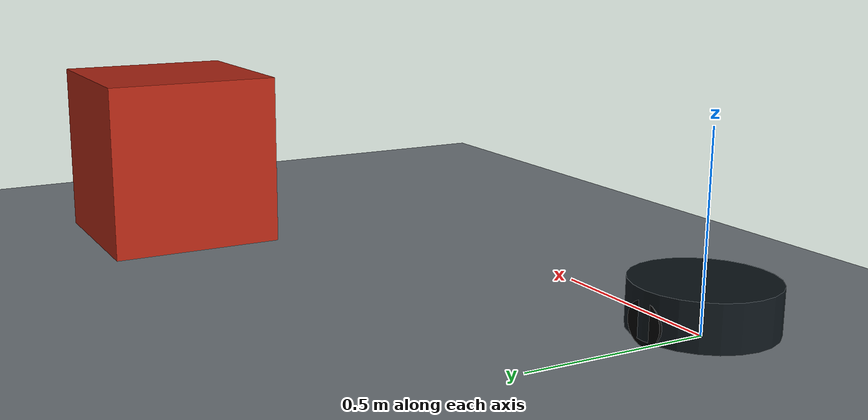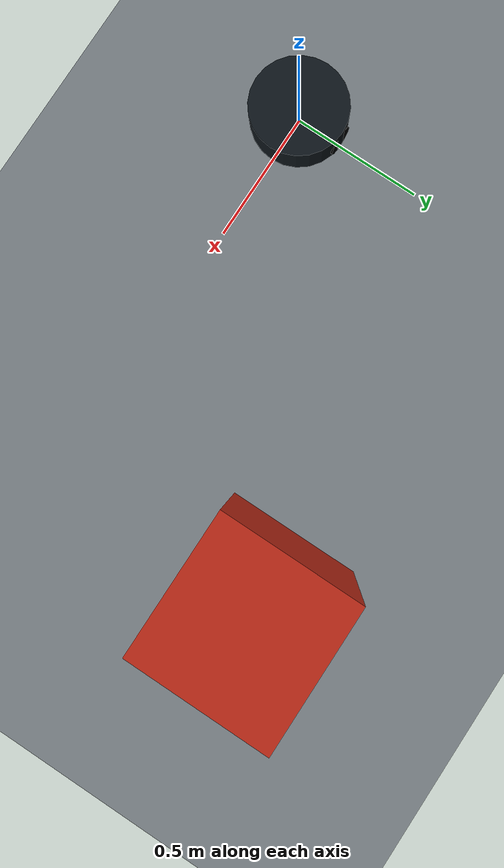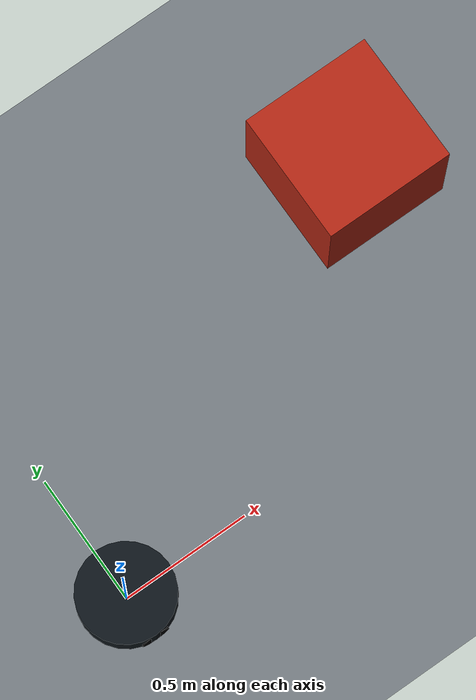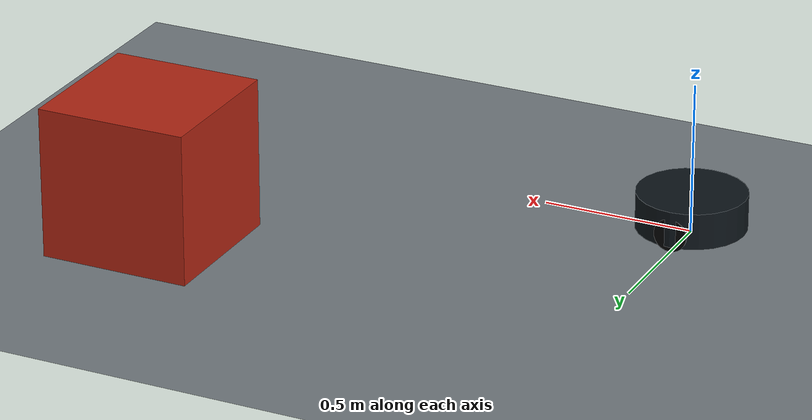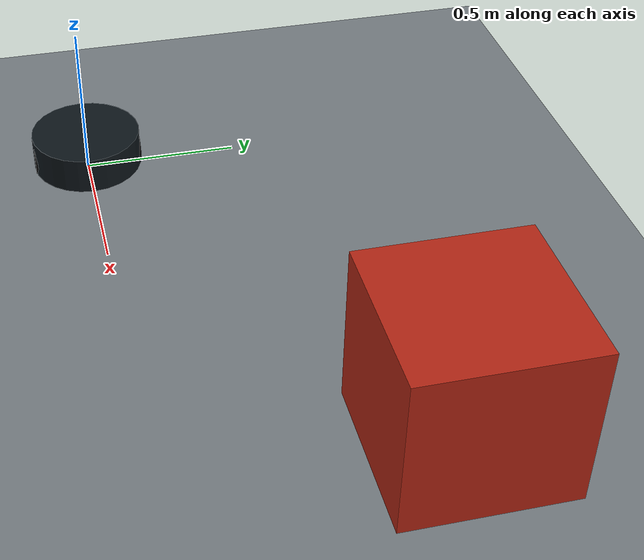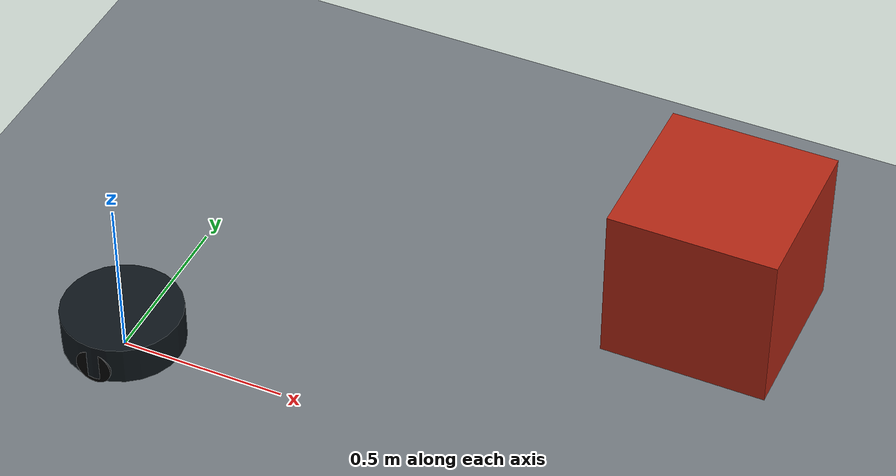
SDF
<?xml version="1.0"?>
<sdf version="1.10">
  <world name="tm_turtlebot_world">
    <plugin filename="gz-sim-physics-system" name="gz::sim::systems::Physics"/>
    <plugin filename="gz-sim-user-commands-system" name="gz::sim::systems::UserCommands"/>
    <plugin filename="gz-sim-scene-broadcaster-system" name="gz::sim::systems::SceneBroadcaster"/>
    <plugin filename="gz-sim-sensors-system" name="gz::sim::systems::Sensors">
      <render_engine>ogre2</render_engine>
    </plugin>

    <gravity>0 0 -9.8</gravity>
    <magnetic_field>6e-06 2.3e-05 -4.2e-05</magnetic_field>
    <atmosphere type="adiabatic"/>

    <light name="sun" type="directional">
      <cast_shadows>true</cast_shadows>
      <pose>0 0 10 0 0 0</pose>
      <diffuse>0.8 0.8 0.8 1</diffuse>
      <specular>0.2 0.2 0.2 1</specular>
      <attenuation>
        <range>1000</range>
        <constant>0.9</constant>
        <linear>0.01</linear>
        <quadratic>0.001</quadratic>
      </attenuation>
      <direction>-0.5 0.1 -0.9</direction>
    </light>

    <model name="ground_plane">
      <static>true</static>
      <link name="link">
        <collision name="collision">
          <geometry>
            <plane>
              <normal>0 0 1</normal>
              <size>20 20</size>
            </plane>
          </geometry>
        </collision>
        <visual name="visual">
          <geometry>
            <plane>
              <normal>0 0 1</normal>
              <size>20 20</size>
            </plane>
          </geometry>
          <material>
            <ambient>0.45 0.48 0.5 1</ambient>
            <diffuse>0.45 0.48 0.5 1</diffuse>
          </material>
        </visual>
      </link>
    </model>

    <model name="tm_turtlebot">
      <pose>0 0 0.08 0 0 0</pose>
      <link name="base_link">
        <inertial>
          <mass>2.0</mass>
          <inertia>
            <ixx>0.03</ixx>
            <iyy>0.03</iyy>
            <izz>0.05</izz>
          </inertia>
        </inertial>
        <collision name="base_collision">
          <geometry>
            <cylinder>
              <radius>0.18</radius>
              <length>0.12</length>
            </cylinder>
          </geometry>
        </collision>
        <visual name="base_visual">
          <geometry>
            <cylinder>
              <radius>0.18</radius>
              <length>0.12</length>
            </cylinder>
          </geometry>
          <material>
            <ambient>0.05 0.08 0.1 1</ambient>
            <diffuse>0.05 0.08 0.1 1</diffuse>
          </material>
        </visual>
        <sensor name="lidar" type="gpu_lidar">
          <pose>0 0 0.13 0 0 0</pose>
          <topic>/scan</topic>
          <update_rate>10</update_rate>
          <ray>
            <scan>
              <horizontal>
                <samples>180</samples>
                <resolution>1</resolution>
                <min_angle>-3.14159</min_angle>
                <max_angle>3.14159</max_angle>
              </horizontal>
            </scan>
            <range>
              <min>0.12</min>
              <max>8.0</max>
              <resolution>0.01</resolution>
            </range>
          </ray>
          <always_on>true</always_on>
          <visualize>true</visualize>
        </sensor>
      </link>

      <link name="left_wheel">
        <pose>0 0.16 -0.02 1.5708 0 0</pose>
        <inertial>
          <mass>0.2</mass>
          <inertia>
            <ixx>0.001</ixx>
            <iyy>0.001</iyy>
            <izz>0.001</izz>
          </inertia>
        </inertial>
        <collision name="collision">
          <geometry>
            <cylinder>
              <radius>0.055</radius>
              <length>0.035</length>
            </cylinder>
          </geometry>
        </collision>
        <visual name="visual">
          <geometry>
            <cylinder>
              <radius>0.055</radius>
              <length>0.035</length>
            </cylinder>
          </geometry>
          <material>
            <ambient>0.01 0.01 0.01 1</ambient>
            <diffuse>0.01 0.01 0.01 1</diffuse>
          </material>
        </visual>
      </link>

      <link name="right_wheel">
        <pose>0 -0.16 -0.02 1.5708 0 0</pose>
        <inertial>
          <mass>0.2</mass>
          <inertia>
            <ixx>0.001</ixx>
            <iyy>0.001</iyy>
            <izz>0.001</izz>
          </inertia>
        </inertial>
        <collision name="collision">
          <geometry>
            <cylinder>
              <radius>0.055</radius>
              <length>0.035</length>
            </cylinder>
          </geometry>
        </collision>
        <visual name="visual">
          <geometry>
            <cylinder>
              <radius>0.055</radius>
              <length>0.035</length>
            </cylinder>
          </geometry>
          <material>
            <ambient>0.01 0.01 0.01 1</ambient>
            <diffuse>0.01 0.01 0.01 1</diffuse>
          </material>
        </visual>
      </link>

      <link name="caster">
        <pose>-0.13 0 -0.045 0 0 0</pose>
        <collision name="collision">
          <geometry>
            <sphere>
              <radius>0.025</radius>
            </sphere>
          </geometry>
        </collision>
        <visual name="visual">
          <geometry>
            <sphere>
              <radius>0.025</radius>
            </sphere>
          </geometry>
          <material>
            <ambient>0.02 0.02 0.02 1</ambient>
            <diffuse>0.02 0.02 0.02 1</diffuse>
          </material>
        </visual>
      </link>

      <joint name="left_wheel_joint" type="revolute">
        <parent>base_link</parent>
        <child>left_wheel</child>
        <axis>
          <xyz>0 1 0</xyz>
          <limit>
            <lower>-1e16</lower>
            <upper>1e16</upper>
          </limit>
        </axis>
      </joint>

      <joint name="right_wheel_joint" type="revolute">
        <parent>base_link</parent>
        <child>right_wheel</child>
        <axis>
          <xyz>0 1 0</xyz>
          <limit>
            <lower>-1e16</lower>
            <upper>1e16</upper>
          </limit>
        </axis>
      </joint>

      <joint name="caster_joint" type="ball">
        <parent>base_link</parent>
        <child>caster</child>
      </joint>

      <plugin filename="gz-sim-diff-drive-system" name="gz::sim::systems::DiffDrive">
        <left_joint>left_wheel_joint</left_joint>
        <right_joint>right_wheel_joint</right_joint>
        <wheel_separation>0.32</wheel_separation>
        <wheel_radius>0.055</wheel_radius>
        <topic>/model/tm_turtlebot/cmd_vel</topic>
        <odom_topic>/model/tm_turtlebot/odometry</odom_topic>
        <frame_id>odom</frame_id>
        <child_frame_id>base_link</child_frame_id>
      </plugin>
    </model>

    <model name="box_obstacle">
      <static>true</static>
      <pose>1.5 0.8 0.25 0 0 0</pose>
      <link name="link">
        <collision name="collision">
          <geometry>
            <box>
              <size>0.5 0.5 0.5</size>
            </box>
          </geometry>
        </collision>
        <visual name="visual">
          <geometry>
            <box>
              <size>0.5 0.5 0.5</size>
            </box>
          </geometry>
          <material>
            <ambient>0.7 0.15 0.08 1</ambient>
            <diffuse>0.7 0.15 0.08 1</diffuse>
          </material>
        </visual>
      </link>
    </model>
  </world>
</sdf>
